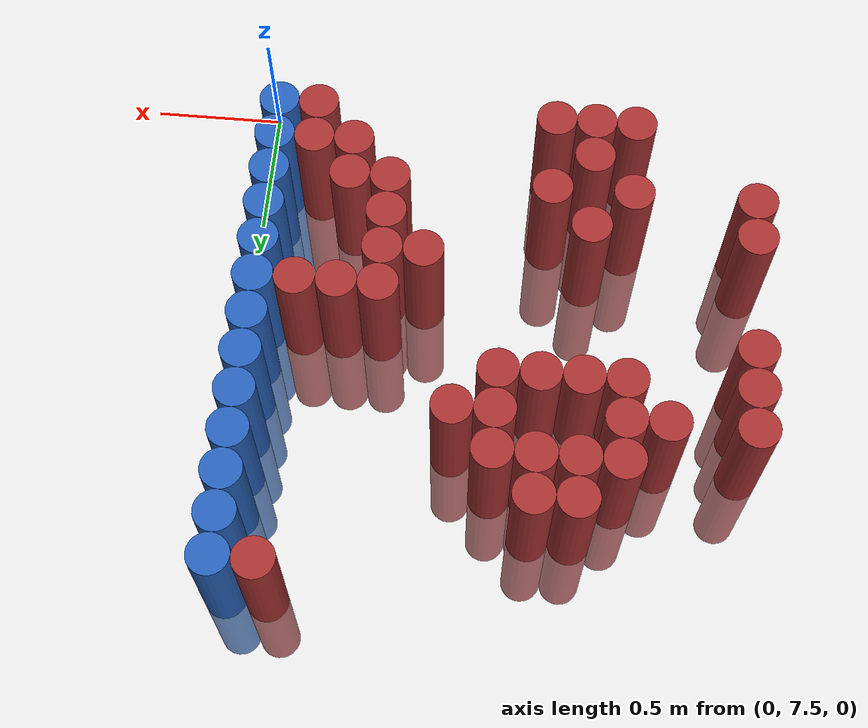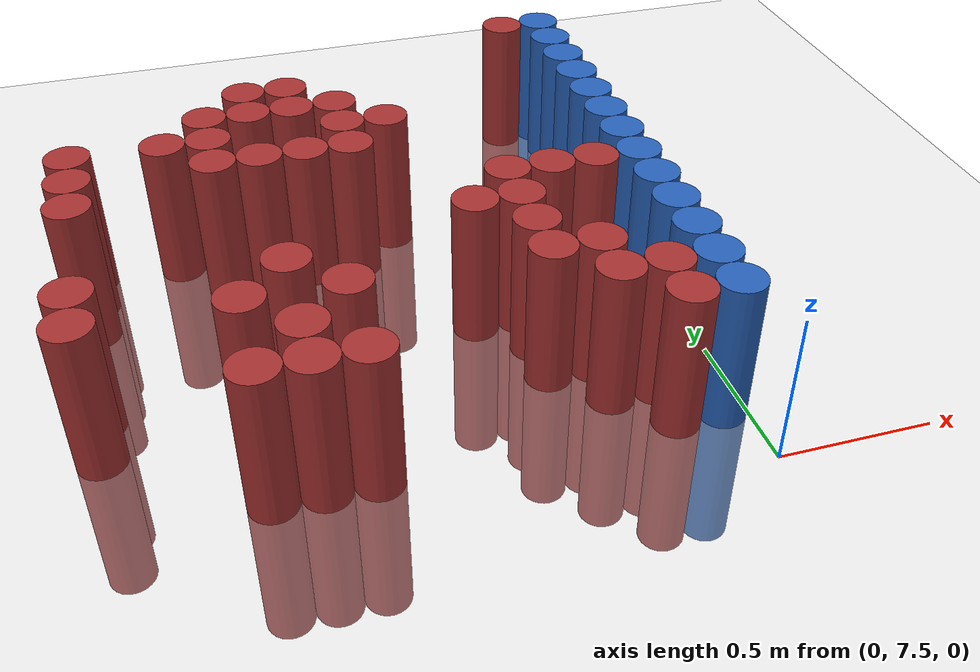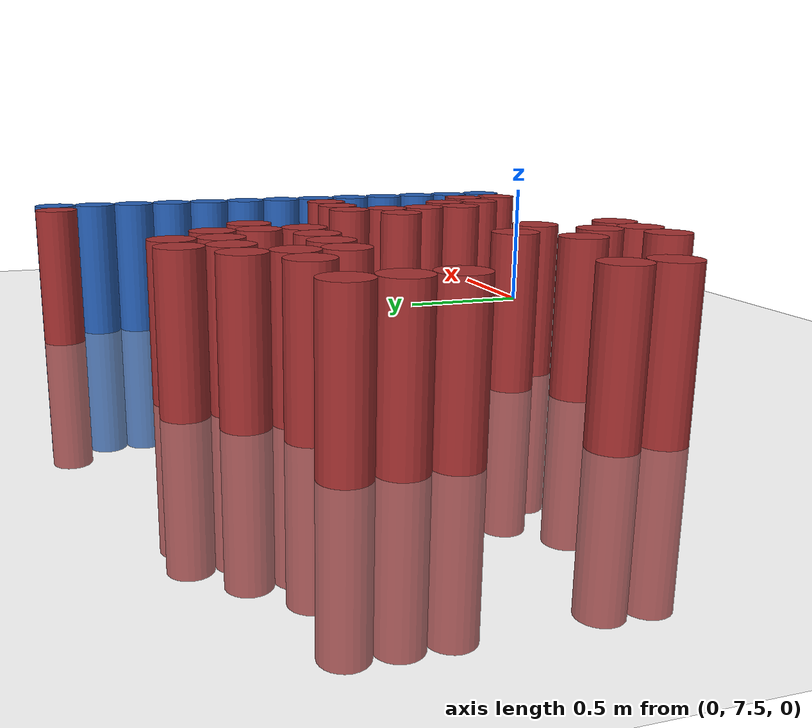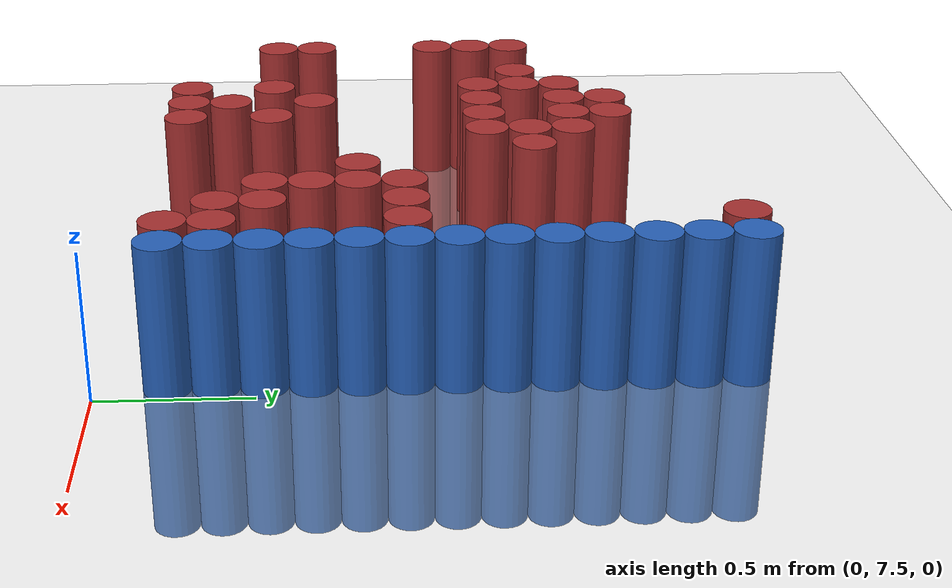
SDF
<sdf version="1.6">
 <world name="default">
  <model name="ground_plane">
   <static>1</static>
   <link name="link">
    <collision name="collision">
     <geometry><plane><normal>0 0 1</normal><size>100 100</size></plane></geometry>
     <surface><friction><ode><mu>100</mu><mu2>50</mu2></ode></friction></surface>
    </collision>
    <visual name="visual">
     <cast_shadows>0</cast_shadows>
     <geometry><plane><normal>0 0 1</normal><size>100 100</size></plane></geometry>
     <material>
      <script><uri>file://media/materials/scripts/gazebo.material</uri><name>Gazebo/Grey</name></script>
     </material>
    </visual>
   </link>
  </model>
  <model name="unit_cylinder_223">
   <static>1</static>
   <pose>-1.875000 8.025000 0.000000 0.000000 0.000000 0.000000</pose>
   <link name="link">
    <inertial>
     <mass>1</mass>
     <inertia><ixx>0.145833</ixx><ixy>0</ixy><ixz>0</ixz><iyy>0.145833</iyy><iyz>0</iyz><izz>0.125</izz></inertia>
    </inertial>
    <collision name="collision">
     <geometry><cylinder><radius>0.075000</radius><length>1</length></cylinder></geometry>
    </collision>
    <visual name="visual">
     <geometry><cylinder><radius>0.075000</radius><length>1</length></cylinder></geometry>
     <material>
      <ambient>0.648000 0.192000 0.192000 1</ambient>
      <diffuse>0.648000 0.192000 0.192000 1</diffuse>
     </material>
     <material>
      <script><name>Gazebo/Grey</name><uri>file://media/materials/scripts/gazebo.material</uri></script>
     </material>
    </visual>
   </link>
  </model>
  <model name="unit_cylinder_224">
   <static>1</static>
   <pose>-1.875000 8.175000 0.000000 0.000000 0.000000 0.000000</pose>
   <link name="link">
    <inertial>
     <mass>1</mass>
     <inertia><ixx>0.145833</ixx><ixy>0</ixy><ixz>0</ixz><iyy>0.145833</iyy><iyz>0</iyz><izz>0.125</izz></inertia>
    </inertial>
    <collision name="collision">
     <geometry><cylinder><radius>0.075000</radius><length>1</length></cylinder></geometry>
    </collision>
    <visual name="visual">
     <geometry><cylinder><radius>0.075000</radius><length>1</length></cylinder></geometry>
     <material>
      <ambient>0.648000 0.192000 0.192000 1</ambient>
      <diffuse>0.648000 0.192000 0.192000 1</diffuse>
     </material>
     <material>
      <script><name>Gazebo/Grey</name><uri>file://media/materials/scripts/gazebo.material</uri></script>
     </material>
    </visual>
   </link>
  </model>
  <model name="unit_cylinder_225">
   <static>1</static>
   <pose>-1.875000 8.625000 0.000000 0.000000 0.000000 0.000000</pose>
   <link name="link">
    <inertial>
     <mass>1</mass>
     <inertia><ixx>0.145833</ixx><ixy>0</ixy><ixz>0</ixz><iyy>0.145833</iyy><iyz>0</iyz><izz>0.125</izz></inertia>
    </inertial>
    <collision name="collision">
     <geometry><cylinder><radius>0.075000</radius><length>1</length></cylinder></geometry>
    </collision>
    <visual name="visual">
     <geometry><cylinder><radius>0.075000</radius><length>1</length></cylinder></geometry>
     <material>
      <ambient>0.648000 0.192000 0.192000 1</ambient>
      <diffuse>0.648000 0.192000 0.192000 1</diffuse>
     </material>
     <material>
      <script><name>Gazebo/Grey</name><uri>file://media/materials/scripts/gazebo.material</uri></script>
     </material>
    </visual>
   </link>
  </model>
  <model name="unit_cylinder_226">
   <static>1</static>
   <pose>-1.875000 8.775000 0.000000 0.000000 0.000000 0.000000</pose>
   <link name="link">
    <inertial>
     <mass>1</mass>
     <inertia><ixx>0.145833</ixx><ixy>0</ixy><ixz>0</ixz><iyy>0.145833</iyy><iyz>0</iyz><izz>0.125</izz></inertia>
    </inertial>
    <collision name="collision">
     <geometry><cylinder><radius>0.075000</radius><length>1</length></cylinder></geometry>
    </collision>
    <visual name="visual">
     <geometry><cylinder><radius>0.075000</radius><length>1</length></cylinder></geometry>
     <material>
      <ambient>0.648000 0.192000 0.192000 1</ambient>
      <diffuse>0.648000 0.192000 0.192000 1</diffuse>
     </material>
     <material>
      <script><name>Gazebo/Grey</name><uri>file://media/materials/scripts/gazebo.material</uri></script>
     </material>
    </visual>
   </link>
  </model>
  <model name="unit_cylinder_227">
   <static>1</static>
   <pose>-1.875000 8.925000 0.000000 0.000000 0.000000 0.000000</pose>
   <link name="link">
    <inertial>
     <mass>1</mass>
     <inertia><ixx>0.145833</ixx><ixy>0</ixy><ixz>0</ixz><iyy>0.145833</iyy><iyz>0</iyz><izz>0.125</izz></inertia>
    </inertial>
    <collision name="collision">
     <geometry><cylinder><radius>0.075000</radius><length>1</length></cylinder></geometry>
    </collision>
    <visual name="visual">
     <geometry><cylinder><radius>0.075000</radius><length>1</length></cylinder></geometry>
     <material>
      <ambient>0.648000 0.192000 0.192000 1</ambient>
      <diffuse>0.648000 0.192000 0.192000 1</diffuse>
     </material>
     <material>
      <script><name>Gazebo/Grey</name><uri>file://media/materials/scripts/gazebo.material</uri></script>
     </material>
    </visual>
   </link>
  </model>
  <model name="unit_cylinder_240">
   <static>1</static>
   <pose>-1.575000 8.925000 0.000000 0.000000 0.000000 0.000000</pose>
   <link name="link">
    <inertial>
     <mass>1</mass>
     <inertia><ixx>0.145833</ixx><ixy>0</ixy><ixz>0</ixz><iyy>0.145833</iyy><iyz>0</iyz><izz>0.125</izz></inertia>
    </inertial>
    <collision name="collision">
     <geometry><cylinder><radius>0.075000</radius><length>1</length></cylinder></geometry>
    </collision>
    <visual name="visual">
     <geometry><cylinder><radius>0.075000</radius><length>1</length></cylinder></geometry>
     <material>
      <ambient>0.648000 0.192000 0.192000 1</ambient>
      <diffuse>0.648000 0.192000 0.192000 1</diffuse>
     </material>
     <material>
      <script><name>Gazebo/Grey</name><uri>file://media/materials/scripts/gazebo.material</uri></script>
     </material>
    </visual>
   </link>
  </model>
  <model name="unit_cylinder_251">
   <static>1</static>
   <pose>-1.425000 7.725000 0.000000 0.000000 0.000000 0.000000</pose>
   <link name="link">
    <inertial>
     <mass>1</mass>
     <inertia><ixx>0.145833</ixx><ixy>0</ixy><ixz>0</ixz><iyy>0.145833</iyy><iyz>0</iyz><izz>0.125</izz></inertia>
    </inertial>
    <collision name="collision">
     <geometry><cylinder><radius>0.075000</radius><length>1</length></cylinder></geometry>
    </collision>
    <visual name="visual">
     <geometry><cylinder><radius>0.075000</radius><length>1</length></cylinder></geometry>
     <material>
      <ambient>0.648000 0.192000 0.192000 1</ambient>
      <diffuse>0.648000 0.192000 0.192000 1</diffuse>
     </material>
     <material>
      <script><name>Gazebo/Grey</name><uri>file://media/materials/scripts/gazebo.material</uri></script>
     </material>
    </visual>
   </link>
  </model>
  <model name="unit_cylinder_252">
   <static>1</static>
   <pose>-1.425000 8.025000 0.000000 0.000000 0.000000 0.000000</pose>
   <link name="link">
    <inertial>
     <mass>1</mass>
     <inertia><ixx>0.145833</ixx><ixy>0</ixy><ixz>0</ixz><iyy>0.145833</iyy><iyz>0</iyz><izz>0.125</izz></inertia>
    </inertial>
    <collision name="collision">
     <geometry><cylinder><radius>0.075000</radius><length>1</length></cylinder></geometry>
    </collision>
    <visual name="visual">
     <geometry><cylinder><radius>0.075000</radius><length>1</length></cylinder></geometry>
     <material>
      <ambient>0.648000 0.192000 0.192000 1</ambient>
      <diffuse>0.648000 0.192000 0.192000 1</diffuse>
     </material>
     <material>
      <script><name>Gazebo/Grey</name><uri>file://media/materials/scripts/gazebo.material</uri></script>
     </material>
    </visual>
   </link>
  </model>
  <model name="unit_cylinder_253">
   <static>1</static>
   <pose>-1.425000 8.775000 0.000000 0.000000 0.000000 0.000000</pose>
   <link name="link">
    <inertial>
     <mass>1</mass>
     <inertia><ixx>0.145833</ixx><ixy>0</ixy><ixz>0</ixz><iyy>0.145833</iyy><iyz>0</iyz><izz>0.125</izz></inertia>
    </inertial>
    <collision name="collision">
     <geometry><cylinder><radius>0.075000</radius><length>1</length></cylinder></geometry>
    </collision>
    <visual name="visual">
     <geometry><cylinder><radius>0.075000</radius><length>1</length></cylinder></geometry>
     <material>
      <ambient>0.648000 0.192000 0.192000 1</ambient>
      <diffuse>0.648000 0.192000 0.192000 1</diffuse>
     </material>
     <material>
      <script><name>Gazebo/Grey</name><uri>file://media/materials/scripts/gazebo.material</uri></script>
     </material>
    </visual>
   </link>
  </model>
  <model name="unit_cylinder_254">
   <static>1</static>
   <pose>-1.425000 8.925000 0.000000 0.000000 0.000000 0.000000</pose>
   <link name="link">
    <inertial>
     <mass>1</mass>
     <inertia><ixx>0.145833</ixx><ixy>0</ixy><ixz>0</ixz><iyy>0.145833</iyy><iyz>0</iyz><izz>0.125</izz></inertia>
    </inertial>
    <collision name="collision">
     <geometry><cylinder><radius>0.075000</radius><length>1</length></cylinder></geometry>
    </collision>
    <visual name="visual">
     <geometry><cylinder><radius>0.075000</radius><length>1</length></cylinder></geometry>
     <material>
      <ambient>0.648000 0.192000 0.192000 1</ambient>
      <diffuse>0.648000 0.192000 0.192000 1</diffuse>
     </material>
     <material>
      <script><name>Gazebo/Grey</name><uri>file://media/materials/scripts/gazebo.material</uri></script>
     </material>
    </visual>
   </link>
  </model>
  <model name="unit_cylinder_255">
   <static>1</static>
   <pose>-1.425000 9.075000 0.000000 0.000000 0.000000 0.000000</pose>
   <link name="link">
    <inertial>
     <mass>1</mass>
     <inertia><ixx>0.145833</ixx><ixy>0</ixy><ixz>0</ixz><iyy>0.145833</iyy><iyz>0</iyz><izz>0.125</izz></inertia>
    </inertial>
    <collision name="collision">
     <geometry><cylinder><radius>0.075000</radius><length>1</length></cylinder></geometry>
    </collision>
    <visual name="visual">
     <geometry><cylinder><radius>0.075000</radius><length>1</length></cylinder></geometry>
     <material>
      <ambient>0.648000 0.192000 0.192000 1</ambient>
      <diffuse>0.648000 0.192000 0.192000 1</diffuse>
     </material>
     <material>
      <script><name>Gazebo/Grey</name><uri>file://media/materials/scripts/gazebo.material</uri></script>
     </material>
    </visual>
   </link>
  </model>
  <model name="unit_cylinder_261">
   <static>1</static>
   <pose>-1.275000 7.725000 0.000000 0.000000 0.000000 0.000000</pose>
   <link name="link">
    <inertial>
     <mass>1</mass>
     <inertia><ixx>0.145833</ixx><ixy>0</ixy><ixz>0</ixz><iyy>0.145833</iyy><iyz>0</iyz><izz>0.125</izz></inertia>
    </inertial>
    <collision name="collision">
     <geometry><cylinder><radius>0.075000</radius><length>1</length></cylinder></geometry>
    </collision>
    <visual name="visual">
     <geometry><cylinder><radius>0.075000</radius><length>1</length></cylinder></geometry>
     <material>
      <ambient>0.648000 0.192000 0.192000 1</ambient>
      <diffuse>0.648000 0.192000 0.192000 1</diffuse>
     </material>
     <material>
      <script><name>Gazebo/Grey</name><uri>file://media/materials/scripts/gazebo.material</uri></script>
     </material>
    </visual>
   </link>
  </model>
  <model name="unit_cylinder_262">
   <static>1</static>
   <pose>-1.275000 7.875000 0.000000 0.000000 0.000000 0.000000</pose>
   <link name="link">
    <inertial>
     <mass>1</mass>
     <inertia><ixx>0.145833</ixx><ixy>0</ixy><ixz>0</ixz><iyy>0.145833</iyy><iyz>0</iyz><izz>0.125</izz></inertia>
    </inertial>
    <collision name="collision">
     <geometry><cylinder><radius>0.075000</radius><length>1</length></cylinder></geometry>
    </collision>
    <visual name="visual">
     <geometry><cylinder><radius>0.075000</radius><length>1</length></cylinder></geometry>
     <material>
      <ambient>0.648000 0.192000 0.192000 1</ambient>
      <diffuse>0.648000 0.192000 0.192000 1</diffuse>
     </material>
     <material>
      <script><name>Gazebo/Grey</name><uri>file://media/materials/scripts/gazebo.material</uri></script>
     </material>
    </visual>
   </link>
  </model>
  <model name="unit_cylinder_263">
   <static>1</static>
   <pose>-1.275000 8.175000 0.000000 0.000000 0.000000 0.000000</pose>
   <link name="link">
    <inertial>
     <mass>1</mass>
     <inertia><ixx>0.145833</ixx><ixy>0</ixy><ixz>0</ixz><iyy>0.145833</iyy><iyz>0</iyz><izz>0.125</izz></inertia>
    </inertial>
    <collision name="collision">
     <geometry><cylinder><radius>0.075000</radius><length>1</length></cylinder></geometry>
    </collision>
    <visual name="visual">
     <geometry><cylinder><radius>0.075000</radius><length>1</length></cylinder></geometry>
     <material>
      <ambient>0.648000 0.192000 0.192000 1</ambient>
      <diffuse>0.648000 0.192000 0.192000 1</diffuse>
     </material>
     <material>
      <script><name>Gazebo/Grey</name><uri>file://media/materials/scripts/gazebo.material</uri></script>
     </material>
    </visual>
   </link>
  </model>
  <model name="unit_cylinder_264">
   <static>1</static>
   <pose>-1.275000 8.775000 0.000000 0.000000 0.000000 0.000000</pose>
   <link name="link">
    <inertial>
     <mass>1</mass>
     <inertia><ixx>0.145833</ixx><ixy>0</ixy><ixz>0</ixz><iyy>0.145833</iyy><iyz>0</iyz><izz>0.125</izz></inertia>
    </inertial>
    <collision name="collision">
     <geometry><cylinder><radius>0.075000</radius><length>1</length></cylinder></geometry>
    </collision>
    <visual name="visual">
     <geometry><cylinder><radius>0.075000</radius><length>1</length></cylinder></geometry>
     <material>
      <ambient>0.648000 0.192000 0.192000 1</ambient>
      <diffuse>0.648000 0.192000 0.192000 1</diffuse>
     </material>
     <material>
      <script><name>Gazebo/Grey</name><uri>file://media/materials/scripts/gazebo.material</uri></script>
     </material>
    </visual>
   </link>
  </model>
  <model name="unit_cylinder_265">
   <static>1</static>
   <pose>-1.275000 9.075000 0.000000 0.000000 0.000000 0.000000</pose>
   <link name="link">
    <inertial>
     <mass>1</mass>
     <inertia><ixx>0.145833</ixx><ixy>0</ixy><ixz>0</ixz><iyy>0.145833</iyy><iyz>0</iyz><izz>0.125</izz></inertia>
    </inertial>
    <collision name="collision">
     <geometry><cylinder><radius>0.075000</radius><length>1</length></cylinder></geometry>
    </collision>
    <visual name="visual">
     <geometry><cylinder><radius>0.075000</radius><length>1</length></cylinder></geometry>
     <material>
      <ambient>0.648000 0.192000 0.192000 1</ambient>
      <diffuse>0.648000 0.192000 0.192000 1</diffuse>
     </material>
     <material>
      <script><name>Gazebo/Grey</name><uri>file://media/materials/scripts/gazebo.material</uri></script>
     </material>
    </visual>
   </link>
  </model>
  <model name="unit_cylinder_266">
   <static>1</static>
   <pose>-1.275000 9.225000 0.000000 0.000000 0.000000 0.000000</pose>
   <link name="link">
    <inertial>
     <mass>1</mass>
     <inertia><ixx>0.145833</ixx><ixy>0</ixy><ixz>0</ixz><iyy>0.145833</iyy><iyz>0</iyz><izz>0.125</izz></inertia>
    </inertial>
    <collision name="collision">
     <geometry><cylinder><radius>0.075000</radius><length>1</length></cylinder></geometry>
    </collision>
    <visual name="visual">
     <geometry><cylinder><radius>0.075000</radius><length>1</length></cylinder></geometry>
     <material>
      <ambient>0.648000 0.192000 0.192000 1</ambient>
      <diffuse>0.648000 0.192000 0.192000 1</diffuse>
     </material>
     <material>
      <script><name>Gazebo/Grey</name><uri>file://media/materials/scripts/gazebo.material</uri></script>
     </material>
    </visual>
   </link>
  </model>
  <model name="unit_cylinder_276">
   <static>1</static>
   <pose>-1.125000 7.725000 0.000000 0.000000 0.000000 0.000000</pose>
   <link name="link">
    <inertial>
     <mass>1</mass>
     <inertia><ixx>0.145833</ixx><ixy>0</ixy><ixz>0</ixz><iyy>0.145833</iyy><iyz>0</iyz><izz>0.125</izz></inertia>
    </inertial>
    <collision name="collision">
     <geometry><cylinder><radius>0.075000</radius><length>1</length></cylinder></geometry>
    </collision>
    <visual name="visual">
     <geometry><cylinder><radius>0.075000</radius><length>1</length></cylinder></geometry>
     <material>
      <ambient>0.648000 0.192000 0.192000 1</ambient>
      <diffuse>0.648000 0.192000 0.192000 1</diffuse>
     </material>
     <material>
      <script><name>Gazebo/Grey</name><uri>file://media/materials/scripts/gazebo.material</uri></script>
     </material>
    </visual>
   </link>
  </model>
  <model name="unit_cylinder_277">
   <static>1</static>
   <pose>-1.125000 8.025000 0.000000 0.000000 0.000000 0.000000</pose>
   <link name="link">
    <inertial>
     <mass>1</mass>
     <inertia><ixx>0.145833</ixx><ixy>0</ixy><ixz>0</ixz><iyy>0.145833</iyy><iyz>0</iyz><izz>0.125</izz></inertia>
    </inertial>
    <collision name="collision">
     <geometry><cylinder><radius>0.075000</radius><length>1</length></cylinder></geometry>
    </collision>
    <visual name="visual">
     <geometry><cylinder><radius>0.075000</radius><length>1</length></cylinder></geometry>
     <material>
      <ambient>0.648000 0.192000 0.192000 1</ambient>
      <diffuse>0.648000 0.192000 0.192000 1</diffuse>
     </material>
     <material>
      <script><name>Gazebo/Grey</name><uri>file://media/materials/scripts/gazebo.material</uri></script>
     </material>
    </visual>
   </link>
  </model>
  <model name="unit_cylinder_278">
   <static>1</static>
   <pose>-1.125000 8.775000 0.000000 0.000000 0.000000 0.000000</pose>
   <link name="link">
    <inertial>
     <mass>1</mass>
     <inertia><ixx>0.145833</ixx><ixy>0</ixy><ixz>0</ixz><iyy>0.145833</iyy><iyz>0</iyz><izz>0.125</izz></inertia>
    </inertial>
    <collision name="collision">
     <geometry><cylinder><radius>0.075000</radius><length>1</length></cylinder></geometry>
    </collision>
    <visual name="visual">
     <geometry><cylinder><radius>0.075000</radius><length>1</length></cylinder></geometry>
     <material>
      <ambient>0.648000 0.192000 0.192000 1</ambient>
      <diffuse>0.648000 0.192000 0.192000 1</diffuse>
     </material>
     <material>
      <script><name>Gazebo/Grey</name><uri>file://media/materials/scripts/gazebo.material</uri></script>
     </material>
    </visual>
   </link>
  </model>
  <model name="unit_cylinder_279">
   <static>1</static>
   <pose>-1.125000 9.075000 0.000000 0.000000 0.000000 0.000000</pose>
   <link name="link">
    <inertial>
     <mass>1</mass>
     <inertia><ixx>0.145833</ixx><ixy>0</ixy><ixz>0</ixz><iyy>0.145833</iyy><iyz>0</iyz><izz>0.125</izz></inertia>
    </inertial>
    <collision name="collision">
     <geometry><cylinder><radius>0.075000</radius><length>1</length></cylinder></geometry>
    </collision>
    <visual name="visual">
     <geometry><cylinder><radius>0.075000</radius><length>1</length></cylinder></geometry>
     <material>
      <ambient>0.648000 0.192000 0.192000 1</ambient>
      <diffuse>0.648000 0.192000 0.192000 1</diffuse>
     </material>
     <material>
      <script><name>Gazebo/Grey</name><uri>file://media/materials/scripts/gazebo.material</uri></script>
     </material>
    </visual>
   </link>
  </model>
  <model name="unit_cylinder_280">
   <static>1</static>
   <pose>-1.125000 9.225000 0.000000 0.000000 0.000000 0.000000</pose>
   <link name="link">
    <inertial>
     <mass>1</mass>
     <inertia><ixx>0.145833</ixx><ixy>0</ixy><ixz>0</ixz><iyy>0.145833</iyy><iyz>0</iyz><izz>0.125</izz></inertia>
    </inertial>
    <collision name="collision">
     <geometry><cylinder><radius>0.075000</radius><length>1</length></cylinder></geometry>
    </collision>
    <visual name="visual">
     <geometry><cylinder><radius>0.075000</radius><length>1</length></cylinder></geometry>
     <material>
      <ambient>0.648000 0.192000 0.192000 1</ambient>
      <diffuse>0.648000 0.192000 0.192000 1</diffuse>
     </material>
     <material>
      <script><name>Gazebo/Grey</name><uri>file://media/materials/scripts/gazebo.material</uri></script>
     </material>
    </visual>
   </link>
  </model>
  <model name="unit_cylinder_287">
   <static>1</static>
   <pose>-0.975000 8.775000 0.000000 0.000000 0.000000 0.000000</pose>
   <link name="link">
    <inertial>
     <mass>1</mass>
     <inertia><ixx>0.145833</ixx><ixy>0</ixy><ixz>0</ixz><iyy>0.145833</iyy><iyz>0</iyz><izz>0.125</izz></inertia>
    </inertial>
    <collision name="collision">
     <geometry><cylinder><radius>0.075000</radius><length>1</length></cylinder></geometry>
    </collision>
    <visual name="visual">
     <geometry><cylinder><radius>0.075000</radius><length>1</length></cylinder></geometry>
     <material>
      <ambient>0.648000 0.192000 0.192000 1</ambient>
      <diffuse>0.648000 0.192000 0.192000 1</diffuse>
     </material>
     <material>
      <script><name>Gazebo/Grey</name><uri>file://media/materials/scripts/gazebo.material</uri></script>
     </material>
    </visual>
   </link>
  </model>
  <model name="unit_cylinder_288">
   <static>1</static>
   <pose>-0.975000 8.925000 0.000000 0.000000 0.000000 0.000000</pose>
   <link name="link">
    <inertial>
     <mass>1</mass>
     <inertia><ixx>0.145833</ixx><ixy>0</ixy><ixz>0</ixz><iyy>0.145833</iyy><iyz>0</iyz><izz>0.125</izz></inertia>
    </inertial>
    <collision name="collision">
     <geometry><cylinder><radius>0.075000</radius><length>1</length></cylinder></geometry>
    </collision>
    <visual name="visual">
     <geometry><cylinder><radius>0.075000</radius><length>1</length></cylinder></geometry>
     <material>
      <ambient>0.648000 0.192000 0.192000 1</ambient>
      <diffuse>0.648000 0.192000 0.192000 1</diffuse>
     </material>
     <material>
      <script><name>Gazebo/Grey</name><uri>file://media/materials/scripts/gazebo.material</uri></script>
     </material>
    </visual>
   </link>
  </model>
  <model name="unit_cylinder_289">
   <static>1</static>
   <pose>-0.975000 9.075000 0.000000 0.000000 0.000000 0.000000</pose>
   <link name="link">
    <inertial>
     <mass>1</mass>
     <inertia><ixx>0.145833</ixx><ixy>0</ixy><ixz>0</ixz><iyy>0.145833</iyy><iyz>0</iyz><izz>0.125</izz></inertia>
    </inertial>
    <collision name="collision">
     <geometry><cylinder><radius>0.075000</radius><length>1</length></cylinder></geometry>
    </collision>
    <visual name="visual">
     <geometry><cylinder><radius>0.075000</radius><length>1</length></cylinder></geometry>
     <material>
      <ambient>0.648000 0.192000 0.192000 1</ambient>
      <diffuse>0.648000 0.192000 0.192000 1</diffuse>
     </material>
     <material>
      <script><name>Gazebo/Grey</name><uri>file://media/materials/scripts/gazebo.material</uri></script>
     </material>
    </visual>
   </link>
  </model>
  <model name="unit_cylinder_294">
   <static>1</static>
   <pose>-0.825000 8.925000 0.000000 0.000000 0.000000 0.000000</pose>
   <link name="link">
    <inertial>
     <mass>1</mass>
     <inertia><ixx>0.145833</ixx><ixy>0</ixy><ixz>0</ixz><iyy>0.145833</iyy><iyz>0</iyz><izz>0.125</izz></inertia>
    </inertial>
    <collision name="collision">
     <geometry><cylinder><radius>0.075000</radius><length>1</length></cylinder></geometry>
    </collision>
    <visual name="visual">
     <geometry><cylinder><radius>0.075000</radius><length>1</length></cylinder></geometry>
     <material>
      <ambient>0.648000 0.192000 0.192000 1</ambient>
      <diffuse>0.648000 0.192000 0.192000 1</diffuse>
     </material>
     <material>
      <script><name>Gazebo/Grey</name><uri>file://media/materials/scripts/gazebo.material</uri></script>
     </material>
    </visual>
   </link>
  </model>
  <model name="unit_cylinder_298">
   <static>1</static>
   <pose>-0.675000 8.325000 0.000000 0.000000 0.000000 0.000000</pose>
   <link name="link">
    <inertial>
     <mass>1</mass>
     <inertia><ixx>0.145833</ixx><ixy>0</ixy><ixz>0</ixz><iyy>0.145833</iyy><iyz>0</iyz><izz>0.125</izz></inertia>
    </inertial>
    <collision name="collision">
     <geometry><cylinder><radius>0.075000</radius><length>1</length></cylinder></geometry>
    </collision>
    <visual name="visual">
     <geometry><cylinder><radius>0.075000</radius><length>1</length></cylinder></geometry>
     <material>
      <ambient>0.648000 0.192000 0.192000 1</ambient>
      <diffuse>0.648000 0.192000 0.192000 1</diffuse>
     </material>
     <material>
      <script><name>Gazebo/Grey</name><uri>file://media/materials/scripts/gazebo.material</uri></script>
     </material>
    </visual>
   </link>
  </model>
  <model name="unit_cylinder_301">
   <static>1</static>
   <pose>-0.525000 8.025000 0.000000 0.000000 0.000000 0.000000</pose>
   <link name="link">
    <inertial>
     <mass>1</mass>
     <inertia><ixx>0.145833</ixx><ixy>0</ixy><ixz>0</ixz><iyy>0.145833</iyy><iyz>0</iyz><izz>0.125</izz></inertia>
    </inertial>
    <collision name="collision">
     <geometry><cylinder><radius>0.075000</radius><length>1</length></cylinder></geometry>
    </collision>
    <visual name="visual">
     <geometry><cylinder><radius>0.075000</radius><length>1</length></cylinder></geometry>
     <material>
      <ambient>0.648000 0.192000 0.192000 1</ambient>
      <diffuse>0.648000 0.192000 0.192000 1</diffuse>
     </material>
     <material>
      <script><name>Gazebo/Grey</name><uri>file://media/materials/scripts/gazebo.material</uri></script>
     </material>
    </visual>
   </link>
  </model>
  <model name="unit_cylinder_302">
   <static>1</static>
   <pose>-0.525000 8.175000 0.000000 0.000000 0.000000 0.000000</pose>
   <link name="link">
    <inertial>
     <mass>1</mass>
     <inertia><ixx>0.145833</ixx><ixy>0</ixy><ixz>0</ixz><iyy>0.145833</iyy><iyz>0</iyz><izz>0.125</izz></inertia>
    </inertial>
    <collision name="collision">
     <geometry><cylinder><radius>0.075000</radius><length>1</length></cylinder></geometry>
    </collision>
    <visual name="visual">
     <geometry><cylinder><radius>0.075000</radius><length>1</length></cylinder></geometry>
     <material>
      <ambient>0.648000 0.192000 0.192000 1</ambient>
      <diffuse>0.648000 0.192000 0.192000 1</diffuse>
     </material>
     <material>
      <script><name>Gazebo/Grey</name><uri>file://media/materials/scripts/gazebo.material</uri></script>
     </material>
    </visual>
   </link>
  </model>
  <model name="unit_cylinder_303">
   <static>1</static>
   <pose>-0.525000 8.325000 0.000000 0.000000 0.000000 0.000000</pose>
   <link name="link">
    <inertial>
     <mass>1</mass>
     <inertia><ixx>0.145833</ixx><ixy>0</ixy><ixz>0</ixz><iyy>0.145833</iyy><iyz>0</iyz><izz>0.125</izz></inertia>
    </inertial>
    <collision name="collision">
     <geometry><cylinder><radius>0.075000</radius><length>1</length></cylinder></geometry>
    </collision>
    <visual name="visual">
     <geometry><cylinder><radius>0.075000</radius><length>1</length></cylinder></geometry>
     <material>
      <ambient>0.648000 0.192000 0.192000 1</ambient>
      <diffuse>0.648000 0.192000 0.192000 1</diffuse>
     </material>
     <material>
      <script><name>Gazebo/Grey</name><uri>file://media/materials/scripts/gazebo.material</uri></script>
     </material>
    </visual>
   </link>
  </model>
  <model name="unit_cylinder_304">
   <static>1</static>
   <pose>-0.525000 8.475000 0.000000 0.000000 0.000000 0.000000</pose>
   <link name="link">
    <inertial>
     <mass>1</mass>
     <inertia><ixx>0.145833</ixx><ixy>0</ixy><ixz>0</ixz><iyy>0.145833</iyy><iyz>0</iyz><izz>0.125</izz></inertia>
    </inertial>
    <collision name="collision">
     <geometry><cylinder><radius>0.075000</radius><length>1</length></cylinder></geometry>
    </collision>
    <visual name="visual">
     <geometry><cylinder><radius>0.075000</radius><length>1</length></cylinder></geometry>
     <material>
      <ambient>0.648000 0.192000 0.192000 1</ambient>
      <diffuse>0.648000 0.192000 0.192000 1</diffuse>
     </material>
     <material>
      <script><name>Gazebo/Grey</name><uri>file://media/materials/scripts/gazebo.material</uri></script>
     </material>
    </visual>
   </link>
  </model>
  <model name="unit_cylinder_309">
   <static>1</static>
   <pose>-0.375000 7.875000 0.000000 0.000000 0.000000 0.000000</pose>
   <link name="link">
    <inertial>
     <mass>1</mass>
     <inertia><ixx>0.145833</ixx><ixy>0</ixy><ixz>0</ixz><iyy>0.145833</iyy><iyz>0</iyz><izz>0.125</izz></inertia>
    </inertial>
    <collision name="collision">
     <geometry><cylinder><radius>0.075000</radius><length>1</length></cylinder></geometry>
    </collision>
    <visual name="visual">
     <geometry><cylinder><radius>0.075000</radius><length>1</length></cylinder></geometry>
     <material>
      <ambient>0.648000 0.192000 0.192000 1</ambient>
      <diffuse>0.648000 0.192000 0.192000 1</diffuse>
     </material>
     <material>
      <script><name>Gazebo/Grey</name><uri>file://media/materials/scripts/gazebo.material</uri></script>
     </material>
    </visual>
   </link>
  </model>
  <model name="unit_cylinder_310">
   <static>1</static>
   <pose>-0.375000 8.025000 0.000000 0.000000 0.000000 0.000000</pose>
   <link name="link">
    <inertial>
     <mass>1</mass>
     <inertia><ixx>0.145833</ixx><ixy>0</ixy><ixz>0</ixz><iyy>0.145833</iyy><iyz>0</iyz><izz>0.125</izz></inertia>
    </inertial>
    <collision name="collision">
     <geometry><cylinder><radius>0.075000</radius><length>1</length></cylinder></geometry>
    </collision>
    <visual name="visual">
     <geometry><cylinder><radius>0.075000</radius><length>1</length></cylinder></geometry>
     <material>
      <ambient>0.648000 0.192000 0.192000 1</ambient>
      <diffuse>0.648000 0.192000 0.192000 1</diffuse>
     </material>
     <material>
      <script><name>Gazebo/Grey</name><uri>file://media/materials/scripts/gazebo.material</uri></script>
     </material>
    </visual>
   </link>
  </model>
  <model name="unit_cylinder_311">
   <static>1</static>
   <pose>-0.375000 8.475000 0.000000 0.000000 0.000000 0.000000</pose>
   <link name="link">
    <inertial>
     <mass>1</mass>
     <inertia><ixx>0.145833</ixx><ixy>0</ixy><ixz>0</ixz><iyy>0.145833</iyy><iyz>0</iyz><izz>0.125</izz></inertia>
    </inertial>
    <collision name="collision">
     <geometry><cylinder><radius>0.075000</radius><length>1</length></cylinder></geometry>
    </collision>
    <visual name="visual">
     <geometry><cylinder><radius>0.075000</radius><length>1</length></cylinder></geometry>
     <material>
      <ambient>0.648000 0.192000 0.192000 1</ambient>
      <diffuse>0.648000 0.192000 0.192000 1</diffuse>
     </material>
     <material>
      <script><name>Gazebo/Grey</name><uri>file://media/materials/scripts/gazebo.material</uri></script>
     </material>
    </visual>
   </link>
  </model>
  <model name="unit_cylinder_321">
   <static>1</static>
   <pose>-0.225000 7.725000 0.000000 0.000000 0.000000 0.000000</pose>
   <link name="link">
    <inertial>
     <mass>1</mass>
     <inertia><ixx>0.145833</ixx><ixy>0</ixy><ixz>0</ixz><iyy>0.145833</iyy><iyz>0</iyz><izz>0.125</izz></inertia>
    </inertial>
    <collision name="collision">
     <geometry><cylinder><radius>0.075000</radius><length>1</length></cylinder></geometry>
    </collision>
    <visual name="visual">
     <geometry><cylinder><radius>0.075000</radius><length>1</length></cylinder></geometry>
     <material>
      <ambient>0.648000 0.192000 0.192000 1</ambient>
      <diffuse>0.648000 0.192000 0.192000 1</diffuse>
     </material>
     <material>
      <script><name>Gazebo/Grey</name><uri>file://media/materials/scripts/gazebo.material</uri></script>
     </material>
    </visual>
   </link>
  </model>
  <model name="unit_cylinder_322">
   <static>1</static>
   <pose>-0.225000 7.875000 0.000000 0.000000 0.000000 0.000000</pose>
   <link name="link">
    <inertial>
     <mass>1</mass>
     <inertia><ixx>0.145833</ixx><ixy>0</ixy><ixz>0</ixz><iyy>0.145833</iyy><iyz>0</iyz><izz>0.125</izz></inertia>
    </inertial>
    <collision name="collision">
     <geometry><cylinder><radius>0.075000</radius><length>1</length></cylinder></geometry>
    </collision>
    <visual name="visual">
     <geometry><cylinder><radius>0.075000</radius><length>1</length></cylinder></geometry>
     <material>
      <ambient>0.648000 0.192000 0.192000 1</ambient>
      <diffuse>0.648000 0.192000 0.192000 1</diffuse>
     </material>
     <material>
      <script><name>Gazebo/Grey</name><uri>file://media/materials/scripts/gazebo.material</uri></script>
     </material>
    </visual>
   </link>
  </model>
  <model name="unit_cylinder_323">
   <static>1</static>
   <pose>-0.225000 8.475000 0.000000 0.000000 0.000000 0.000000</pose>
   <link name="link">
    <inertial>
     <mass>1</mass>
     <inertia><ixx>0.145833</ixx><ixy>0</ixy><ixz>0</ixz><iyy>0.145833</iyy><iyz>0</iyz><izz>0.125</izz></inertia>
    </inertial>
    <collision name="collision">
     <geometry><cylinder><radius>0.075000</radius><length>1</length></cylinder></geometry>
    </collision>
    <visual name="visual">
     <geometry><cylinder><radius>0.075000</radius><length>1</length></cylinder></geometry>
     <material>
      <ambient>0.648000 0.192000 0.192000 1</ambient>
      <diffuse>0.648000 0.192000 0.192000 1</diffuse>
     </material>
     <material>
      <script><name>Gazebo/Grey</name><uri>file://media/materials/scripts/gazebo.material</uri></script>
     </material>
    </visual>
   </link>
  </model>
  <model name="unit_cylinder_324">
   <static>1</static>
   <pose>-0.225000 9.525000 0.000000 0.000000 0.000000 0.000000</pose>
   <link name="link">
    <inertial>
     <mass>1</mass>
     <inertia><ixx>0.145833</ixx><ixy>0</ixy><ixz>0</ixz><iyy>0.145833</iyy><iyz>0</iyz><izz>0.125</izz></inertia>
    </inertial>
    <collision name="collision">
     <geometry><cylinder><radius>0.075000</radius><length>1</length></cylinder></geometry>
    </collision>
    <visual name="visual">
     <geometry><cylinder><radius>0.075000</radius><length>1</length></cylinder></geometry>
     <material>
      <ambient>0.648000 0.192000 0.192000 1</ambient>
      <diffuse>0.648000 0.192000 0.192000 1</diffuse>
     </material>
     <material>
      <script><name>Gazebo/Grey</name><uri>file://media/materials/scripts/gazebo.material</uri></script>
     </material>
    </visual>
   </link>
  </model>
  <model name="unit_cylinder_342">
   <static>1</static>
   <pose>-0.075000 7.725000 0.000000 0.000000 0.000000 0.000000</pose>
   <link name="link">
    <inertial>
     <mass>1</mass>
     <inertia><ixx>0.145833</ixx><ixy>0</ixy><ixz>0</ixz><iyy>0.145833</iyy><iyz>0</iyz><izz>0.125</izz></inertia>
    </inertial>
    <collision name="collision">
     <geometry><cylinder><radius>0.075000</radius><length>1</length></cylinder></geometry>
    </collision>
    <visual name="visual">
     <geometry><cylinder><radius>0.075000</radius><length>1</length></cylinder></geometry>
     <material>
      <ambient>0.152000 0.379000 0.720000 1</ambient>
      <diffuse>0.152000 0.379000 0.720000 1</diffuse>
     </material>
     <material>
      <script><name>Gazebo/Grey</name><uri>file://media/materials/scripts/gazebo.material</uri></script>
     </material>
    </visual>
   </link>
  </model>
  <model name="unit_cylinder_343">
   <static>1</static>
   <pose>-0.075000 7.875000 0.000000 0.000000 0.000000 0.000000</pose>
   <link name="link">
    <inertial>
     <mass>1</mass>
     <inertia><ixx>0.145833</ixx><ixy>0</ixy><ixz>0</ixz><iyy>0.145833</iyy><iyz>0</iyz><izz>0.125</izz></inertia>
    </inertial>
    <collision name="collision">
     <geometry><cylinder><radius>0.075000</radius><length>1</length></cylinder></geometry>
    </collision>
    <visual name="visual">
     <geometry><cylinder><radius>0.075000</radius><length>1</length></cylinder></geometry>
     <material>
      <ambient>0.152000 0.379000 0.720000 1</ambient>
      <diffuse>0.152000 0.379000 0.720000 1</diffuse>
     </material>
     <material>
      <script><name>Gazebo/Grey</name><uri>file://media/materials/scripts/gazebo.material</uri></script>
     </material>
    </visual>
   </link>
  </model>
  <model name="unit_cylinder_344">
   <static>1</static>
   <pose>-0.075000 8.025000 0.000000 0.000000 0.000000 0.000000</pose>
   <link name="link">
    <inertial>
     <mass>1</mass>
     <inertia><ixx>0.145833</ixx><ixy>0</ixy><ixz>0</ixz><iyy>0.145833</iyy><iyz>0</iyz><izz>0.125</izz></inertia>
    </inertial>
    <collision name="collision">
     <geometry><cylinder><radius>0.075000</radius><length>1</length></cylinder></geometry>
    </collision>
    <visual name="visual">
     <geometry><cylinder><radius>0.075000</radius><length>1</length></cylinder></geometry>
     <material>
      <ambient>0.152000 0.379000 0.720000 1</ambient>
      <diffuse>0.152000 0.379000 0.720000 1</diffuse>
     </material>
     <material>
      <script><name>Gazebo/Grey</name><uri>file://media/materials/scripts/gazebo.material</uri></script>
     </material>
    </visual>
   </link>
  </model>
  <model name="unit_cylinder_345">
   <static>1</static>
   <pose>-0.075000 8.175000 0.000000 0.000000 0.000000 0.000000</pose>
   <link name="link">
    <inertial>
     <mass>1</mass>
     <inertia><ixx>0.145833</ixx><ixy>0</ixy><ixz>0</ixz><iyy>0.145833</iyy><iyz>0</iyz><izz>0.125</izz></inertia>
    </inertial>
    <collision name="collision">
     <geometry><cylinder><radius>0.075000</radius><length>1</length></cylinder></geometry>
    </collision>
    <visual name="visual">
     <geometry><cylinder><radius>0.075000</radius><length>1</length></cylinder></geometry>
     <material>
      <ambient>0.152000 0.379000 0.720000 1</ambient>
      <diffuse>0.152000 0.379000 0.720000 1</diffuse>
     </material>
     <material>
      <script><name>Gazebo/Grey</name><uri>file://media/materials/scripts/gazebo.material</uri></script>
     </material>
    </visual>
   </link>
  </model>
  <model name="unit_cylinder_346">
   <static>1</static>
   <pose>-0.075000 8.325000 0.000000 0.000000 0.000000 0.000000</pose>
   <link name="link">
    <inertial>
     <mass>1</mass>
     <inertia><ixx>0.145833</ixx><ixy>0</ixy><ixz>0</ixz><iyy>0.145833</iyy><iyz>0</iyz><izz>0.125</izz></inertia>
    </inertial>
    <collision name="collision">
     <geometry><cylinder><radius>0.075000</radius><length>1</length></cylinder></geometry>
    </collision>
    <visual name="visual">
     <geometry><cylinder><radius>0.075000</radius><length>1</length></cylinder></geometry>
     <material>
      <ambient>0.152000 0.379000 0.720000 1</ambient>
      <diffuse>0.152000 0.379000 0.720000 1</diffuse>
     </material>
     <material>
      <script><name>Gazebo/Grey</name><uri>file://media/materials/scripts/gazebo.material</uri></script>
     </material>
    </visual>
   </link>
  </model>
  <model name="unit_cylinder_347">
   <static>1</static>
   <pose>-0.075000 8.475000 0.000000 0.000000 0.000000 0.000000</pose>
   <link name="link">
    <inertial>
     <mass>1</mass>
     <inertia><ixx>0.145833</ixx><ixy>0</ixy><ixz>0</ixz><iyy>0.145833</iyy><iyz>0</iyz><izz>0.125</izz></inertia>
    </inertial>
    <collision name="collision">
     <geometry><cylinder><radius>0.075000</radius><length>1</length></cylinder></geometry>
    </collision>
    <visual name="visual">
     <geometry><cylinder><radius>0.075000</radius><length>1</length></cylinder></geometry>
     <material>
      <ambient>0.152000 0.379000 0.720000 1</ambient>
      <diffuse>0.152000 0.379000 0.720000 1</diffuse>
     </material>
     <material>
      <script><name>Gazebo/Grey</name><uri>file://media/materials/scripts/gazebo.material</uri></script>
     </material>
    </visual>
   </link>
  </model>
  <model name="unit_cylinder_348">
   <static>1</static>
   <pose>-0.075000 8.625000 0.000000 0.000000 0.000000 0.000000</pose>
   <link name="link">
    <inertial>
     <mass>1</mass>
     <inertia><ixx>0.145833</ixx><ixy>0</ixy><ixz>0</ixz><iyy>0.145833</iyy><iyz>0</iyz><izz>0.125</izz></inertia>
    </inertial>
    <collision name="collision">
     <geometry><cylinder><radius>0.075000</radius><length>1</length></cylinder></geometry>
    </collision>
    <visual name="visual">
     <geometry><cylinder><radius>0.075000</radius><length>1</length></cylinder></geometry>
     <material>
      <ambient>0.152000 0.379000 0.720000 1</ambient>
      <diffuse>0.152000 0.379000 0.720000 1</diffuse>
     </material>
     <material>
      <script><name>Gazebo/Grey</name><uri>file://media/materials/scripts/gazebo.material</uri></script>
     </material>
    </visual>
   </link>
  </model>
  <model name="unit_cylinder_349">
   <static>1</static>
   <pose>-0.075000 8.775000 0.000000 0.000000 0.000000 0.000000</pose>
   <link name="link">
    <inertial>
     <mass>1</mass>
     <inertia><ixx>0.145833</ixx><ixy>0</ixy><ixz>0</ixz><iyy>0.145833</iyy><iyz>0</iyz><izz>0.125</izz></inertia>
    </inertial>
    <collision name="collision">
     <geometry><cylinder><radius>0.075000</radius><length>1</length></cylinder></geometry>
    </collision>
    <visual name="visual">
     <geometry><cylinder><radius>0.075000</radius><length>1</length></cylinder></geometry>
     <material>
      <ambient>0.152000 0.379000 0.720000 1</ambient>
      <diffuse>0.152000 0.379000 0.720000 1</diffuse>
     </material>
     <material>
      <script><name>Gazebo/Grey</name><uri>file://media/materials/scripts/gazebo.material</uri></script>
     </material>
    </visual>
   </link>
  </model>
  <model name="unit_cylinder_350">
   <static>1</static>
   <pose>-0.075000 8.925000 0.000000 0.000000 0.000000 0.000000</pose>
   <link name="link">
    <inertial>
     <mass>1</mass>
     <inertia><ixx>0.145833</ixx><ixy>0</ixy><ixz>0</ixz><iyy>0.145833</iyy><iyz>0</iyz><izz>0.125</izz></inertia>
    </inertial>
    <collision name="collision">
     <geometry><cylinder><radius>0.075000</radius><length>1</length></cylinder></geometry>
    </collision>
    <visual name="visual">
     <geometry><cylinder><radius>0.075000</radius><length>1</length></cylinder></geometry>
     <material>
      <ambient>0.152000 0.379000 0.720000 1</ambient>
      <diffuse>0.152000 0.379000 0.720000 1</diffuse>
     </material>
     <material>
      <script><name>Gazebo/Grey</name><uri>file://media/materials/scripts/gazebo.material</uri></script>
     </material>
    </visual>
   </link>
  </model>
  <model name="unit_cylinder_351">
   <static>1</static>
   <pose>-0.075000 9.075000 0.000000 0.000000 0.000000 0.000000</pose>
   <link name="link">
    <inertial>
     <mass>1</mass>
     <inertia><ixx>0.145833</ixx><ixy>0</ixy><ixz>0</ixz><iyy>0.145833</iyy><iyz>0</iyz><izz>0.125</izz></inertia>
    </inertial>
    <collision name="collision">
     <geometry><cylinder><radius>0.075000</radius><length>1</length></cylinder></geometry>
    </collision>
    <visual name="visual">
     <geometry><cylinder><radius>0.075000</radius><length>1</length></cylinder></geometry>
     <material>
      <ambient>0.152000 0.379000 0.720000 1</ambient>
      <diffuse>0.152000 0.379000 0.720000 1</diffuse>
     </material>
     <material>
      <script><name>Gazebo/Grey</name><uri>file://media/materials/scripts/gazebo.material</uri></script>
     </material>
    </visual>
   </link>
  </model>
  <model name="unit_cylinder_352">
   <static>1</static>
   <pose>-0.075000 9.225000 0.000000 0.000000 0.000000 0.000000</pose>
   <link name="link">
    <inertial>
     <mass>1</mass>
     <inertia><ixx>0.145833</ixx><ixy>0</ixy><ixz>0</ixz><iyy>0.145833</iyy><iyz>0</iyz><izz>0.125</izz></inertia>
    </inertial>
    <collision name="collision">
     <geometry><cylinder><radius>0.075000</radius><length>1</length></cylinder></geometry>
    </collision>
    <visual name="visual">
     <geometry><cylinder><radius>0.075000</radius><length>1</length></cylinder></geometry>
     <material>
      <ambient>0.152000 0.379000 0.720000 1</ambient>
      <diffuse>0.152000 0.379000 0.720000 1</diffuse>
     </material>
     <material>
      <script><name>Gazebo/Grey</name><uri>file://media/materials/scripts/gazebo.material</uri></script>
     </material>
    </visual>
   </link>
  </model>
  <model name="unit_cylinder_353">
   <static>1</static>
   <pose>-0.075000 9.375000 0.000000 0.000000 0.000000 0.000000</pose>
   <link name="link">
    <inertial>
     <mass>1</mass>
     <inertia><ixx>0.145833</ixx><ixy>0</ixy><ixz>0</ixz><iyy>0.145833</iyy><iyz>0</iyz><izz>0.125</izz></inertia>
    </inertial>
    <collision name="collision">
     <geometry><cylinder><radius>0.075000</radius><length>1</length></cylinder></geometry>
    </collision>
    <visual name="visual">
     <geometry><cylinder><radius>0.075000</radius><length>1</length></cylinder></geometry>
     <material>
      <ambient>0.152000 0.379000 0.720000 1</ambient>
      <diffuse>0.152000 0.379000 0.720000 1</diffuse>
     </material>
     <material>
      <script><name>Gazebo/Grey</name><uri>file://media/materials/scripts/gazebo.material</uri></script>
     </material>
    </visual>
   </link>
  </model>
  <model name="unit_cylinder_354">
   <static>1</static>
   <pose>-0.075000 9.525000 0.000000 0.000000 0.000000 0.000000</pose>
   <link name="link">
    <inertial>
     <mass>1</mass>
     <inertia><ixx>0.145833</ixx><ixy>0</ixy><ixz>0</ixz><iyy>0.145833</iyy><iyz>0</iyz><izz>0.125</izz></inertia>
    </inertial>
    <collision name="collision">
     <geometry><cylinder><radius>0.075000</radius><length>1</length></cylinder></geometry>
    </collision>
    <visual name="visual">
     <geometry><cylinder><radius>0.075000</radius><length>1</length></cylinder></geometry>
     <material>
      <ambient>0.152000 0.379000 0.720000 1</ambient>
      <diffuse>0.152000 0.379000 0.720000 1</diffuse>
     </material>
     <material>
      <script><name>Gazebo/Grey</name><uri>file://media/materials/scripts/gazebo.material</uri></script>
     </material>
    </visual>
   </link>
  </model>
 </world>
</sdf>
